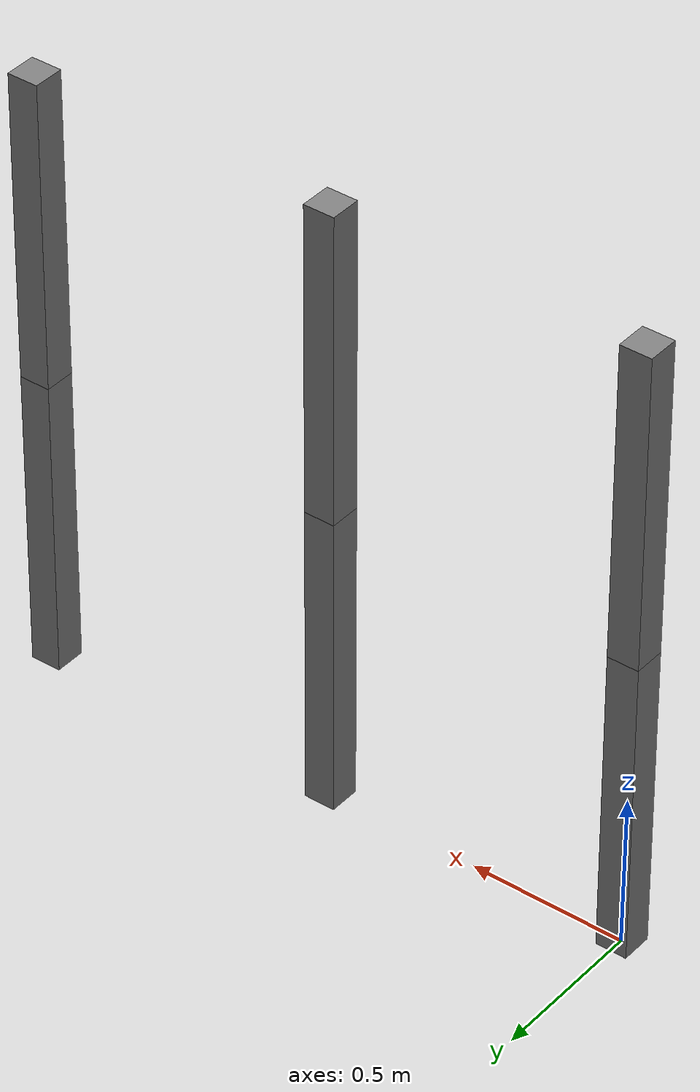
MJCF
<mujoco model="equality_joint_attributes">
  <worldbody>
    <body name="body0" pos="0 0 0.5">
      <geom type="box" size="0.05 0.05 0.5"/>
      <joint name="hinge0" type="hinge" axis="1 0 0" range="-90 90"/>
      <body name="body1" pos="0 0 1">
        <geom type="box" size="0.05 0.05 0.5"/>
        <joint name="hinge1" type="hinge" axis="1 0 0" range="-90 90"/>
      </body>
    </body>
    <body name="body2" pos="1 0 0.5">
      <geom type="box" size="0.05 0.05 0.5"/>
      <joint name="slide0" type="slide" axis="0 0 1" range="0 0.5"/>
      <body name="body3" pos="0 0 1">
        <geom type="box" size="0.05 0.05 0.5"/>
        <joint name="slide1" type="slide" axis="0 0 1" range="0 0.5"/>
      </body>
    </body>
    <body name="body4" pos="2 0 0.5">
      <geom type="box" size="0.05 0.05 0.5"/>
      <joint name="hinge2" type="hinge" axis="1 0 0" range="-45 45"/>
      <body name="body5" pos="0 0 1">
        <geom type="box" size="0.05 0.05 0.5"/>
        <joint name="hinge3" type="hinge" axis="1 0 0" range="-45 45"/>
      </body>
    </body>
  </worldbody>
  <equality>
    <!-- Custom joint equality with non-default values -->
    <joint name="custom_joint_eq"
           joint1="hinge0"
           joint2="hinge1"
           solimp="0.85 0.92 0.003 0.7 4"
           solref="0.01 0.6"
           polycoef="0.5 1.5 0.1 0.05 0.02"/>
    <!-- Default joint equality with default values -->
    <joint name="default_joint_eq"
           joint1="slide0"
           joint2="slide1"
           solimp="0.9 0.95 0.001 0.5 2"
           solref="0.02 1"
           polycoef="0.25 1 0 0 0"/>
    <!-- Disabled joint equality: active="false" → physics:jointEnabled authored and false -->
    <joint name="disabled_joint_eq"
           joint1="hinge2"
           joint2="hinge3"
           active="false"/>
  </equality>
</mujoco>
